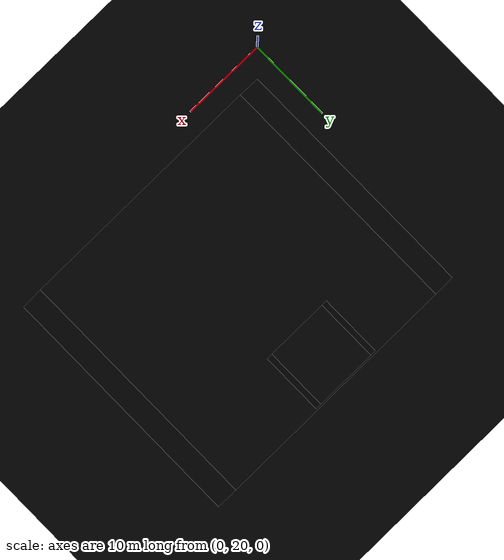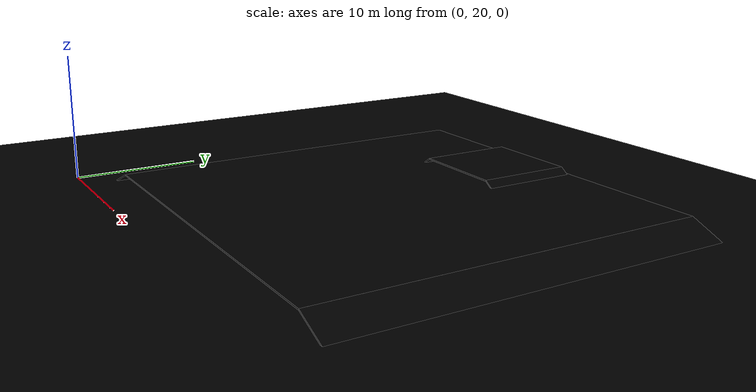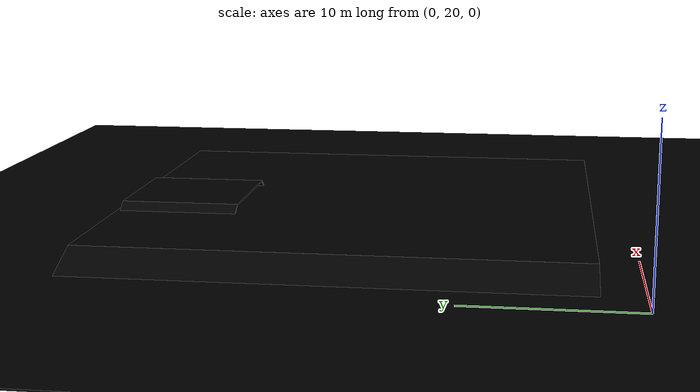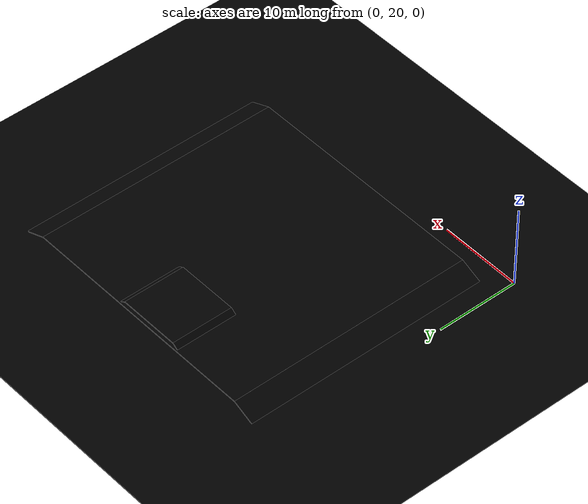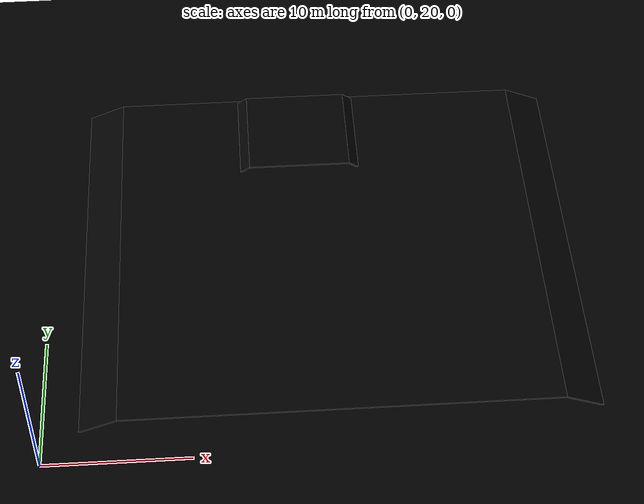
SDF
<?xml version="1.0"?>
<sdf version="1.4">
  <model name="test_palne">
    <static>true</static>
    <link name="link">
      <collision name="collision">
        <geometry>
          <box>
            <size>200 200 0.1</size>
          </box>
        </geometry>
        <surface>
          <friction>
            <ode>
              <mu>1</mu>
              <mu2>1</mu2>
	       <fdir1>0.000000 0.000000 0.000000</fdir1>
              <slip1>0.000000</slip1>
              <slip2>0.000000</slip2>
            </ode>
          </friction>
          <bounce>
            <restitution_coefficient>0.000000</restitution_coefficient>
            <threshold>100000.000000</threshold>
          </bounce>
          <contact>
            <ode>
              <soft_cfm>0.000000</soft_cfm>
              <soft_erp>0.200000</soft_erp>
              <kp>100000.000000</kp>
              <kd>1.000000</kd>
              <max_vel>100.000000</max_vel>
              <min_depth>0.001000</min_depth>
            </ode>
          </contact>
        </surface>
      </collision>

      <visual name="visual_1">
        <pose>0 0 0 0 0 0</pose>
        <cast_shadows>false</cast_shadows>
        <geometry>
          <box>
            <size>200 200 0.1</size>
          </box>
        </geometry>
        <material>
          <ambient>109 112 113 1</ambient>
          <diffuse>0 0 0 1</diffuse>
          <specular>0 0 0 0</specular>
          <emissive>0 0 0 1</emissive>
        </material>
      </visual>
      <visual name="visual_2">
        <pose>20 37.5 1.1 0 0 0</pose>
        <cast_shadows>false</cast_shadows>
        <geometry>
          <box>
            <size>30 30 0.1</size>
          </box>
        </geometry>
        <material>
          <ambient>137 179 194 1</ambient>
          <diffuse>0 0 0 1</diffuse>
          <specular>0 0 0 0</specular>
          <emissive>0 0 0 1</emissive>
        </material>
      </visual>
      <visual name="visual_3">
        <pose>18.34 48.55 1.573  0 0 0</pose>
        <cast_shadows>false</cast_shadows>
        <geometry>
          <box>
            <size>7.5 7.5 0.1</size>
          </box>
        </geometry>
        <material>
          <ambient>229 237 239 1</ambient>
          <diffuse>0 0 0 1</diffuse>
          <specular>0 0 0 0</specular>
          <emissive>0 0 0 1</emissive>
        </material>
      </visual>

      <visual name="visual_4">
        <pose>14.205 48.55 1.3  0 -0.6 0</pose>
        <cast_shadows>true</cast_shadows>
        <geometry>
          <box>
            <size>1 7.5 0.1</size>
          </box>
        </geometry>
        <material>
          <ambient>229 237 239 1</ambient>
          <diffuse>0 0 0 1</diffuse>
          <specular>0 0 0 0</specular>
          <emissive>0 0 0 1</emissive>
        </material>
      </visual>
      <visual name="visual_5">
        <pose>22.475 48.55 1.3  0 0.6 0</pose>
        <cast_shadows>true</cast_shadows>
        <geometry>
          <box>
            <size>1 7.5 0.1</size>
          </box>
        </geometry>
        <material>
          <ambient>229 237 239 1</ambient>
          <diffuse>0 0 0 1</diffuse>
          <specular>0 0 0 0</specular>
          <emissive>0 0 0 1</emissive>
        </material>
      </visual>

      <visual name="visual_6">
        <pose>3.64 37.5 0.52  0 -0.4 0</pose>
        <cast_shadows>true</cast_shadows>
        <geometry>
          <box>
            <size>3 30 0.1</size>
          </box>
        </geometry>
        <material>
          <ambient>137 179 194 1</ambient>
          <diffuse>0 0 0 1</diffuse>
          <specular>0 0 0 0</specular>
          <emissive>0 0 0 1</emissive>
        </material>
      </visual>
      <visual name="visual_7">
        <pose>36.36 37.5 0.52  0 0.4 0</pose>
        <cast_shadows>true</cast_shadows>
        <geometry>
          <box>
            <size>3 30 0.1</size>
          </box>
        </geometry>
        <material>
          <ambient>137 179 194 1</ambient>
          <diffuse>0 0 0 1</diffuse>
          <specular>0 0 0 0</specular>
          <emissive>0 0 0 1</emissive>
        </material>
      </visual>
    </link>
  </model>
</sdf>
